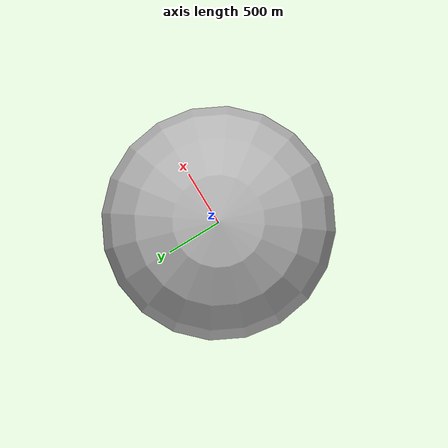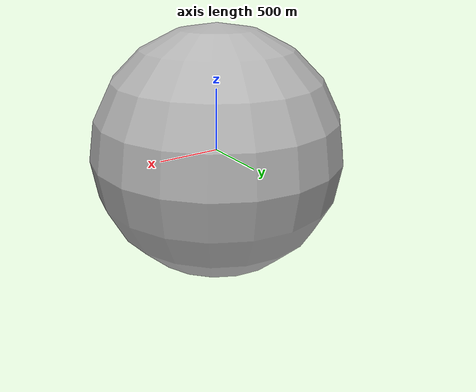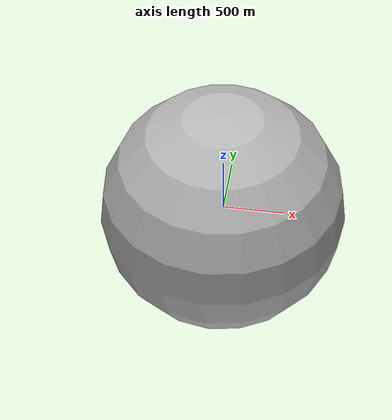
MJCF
<mujoco>
  <option gravity="0 0 -9.81" />
  <worldbody>
    <body name="object_4" pos="0 0 1">
      <geom type="sphere" size="0.2" rgba="0.7 0.7 0.7 1" />
    </body>
    <body name="object_1" pos="-3 0 1">
      <geom type="box" size="3 0.1 0.1" rgba="0.7 0.7 0.7 1" />
    </body>
    <body name="object_2" pos="-5 0 1.1">
      <geom type="box" size="0.2 0.2 0.2" rgba="0.7 0.7 0.7 1" />
      <joint name="object_2_joint" type="free" />
    </body>
    <body name="object_3" pos="2 0 1.1">
      <geom type="box" size="0.2 0.2 0.2" rgba="0.7 0.7 0.7 1" />
      <joint name="object_3_joint" type="free" />
    </body>
  <body name="weight3" pos="-4.0 0.0 1.2"><geom type="sphere" size="1000.0" rgba="0.7 0.7 0.7 1" /></body></worldbody>
</mujoco>
